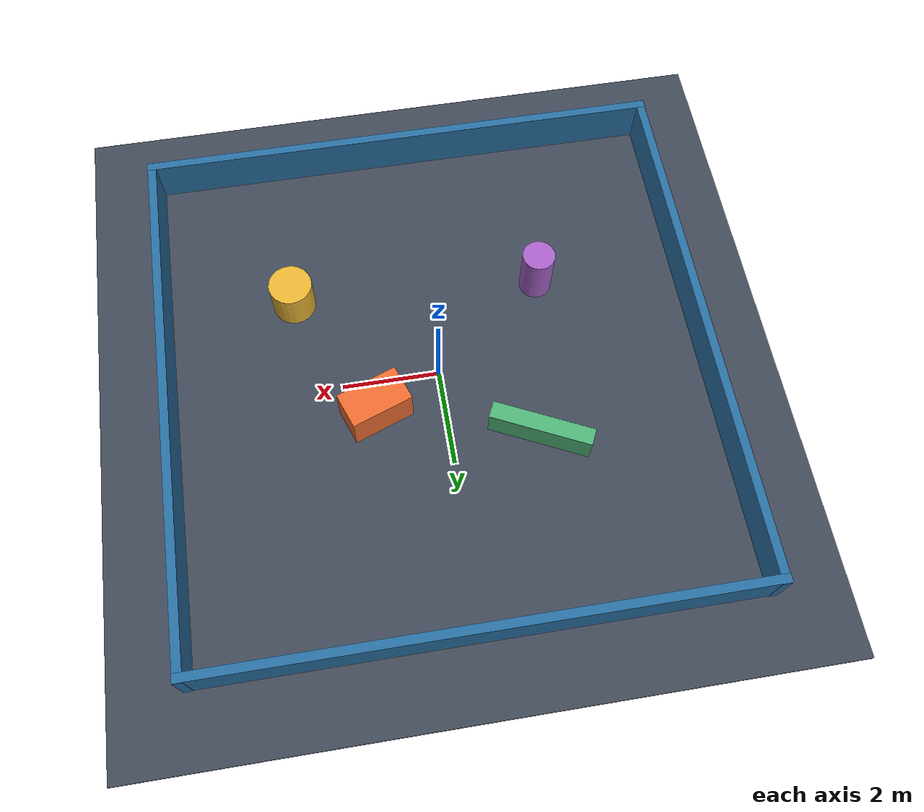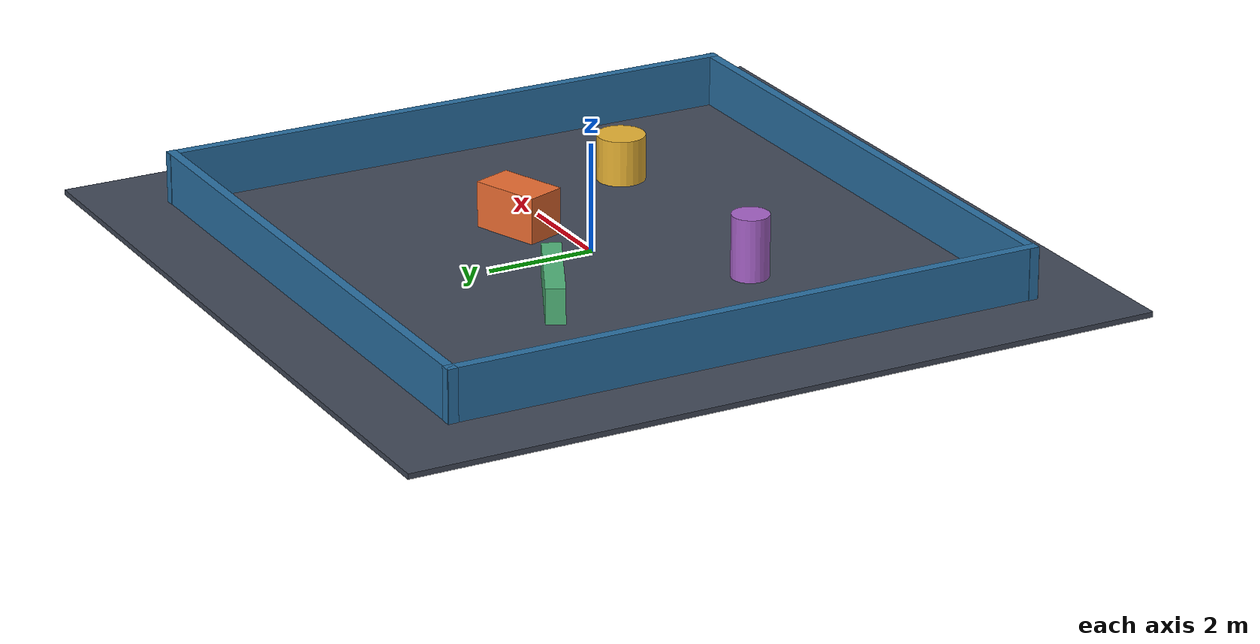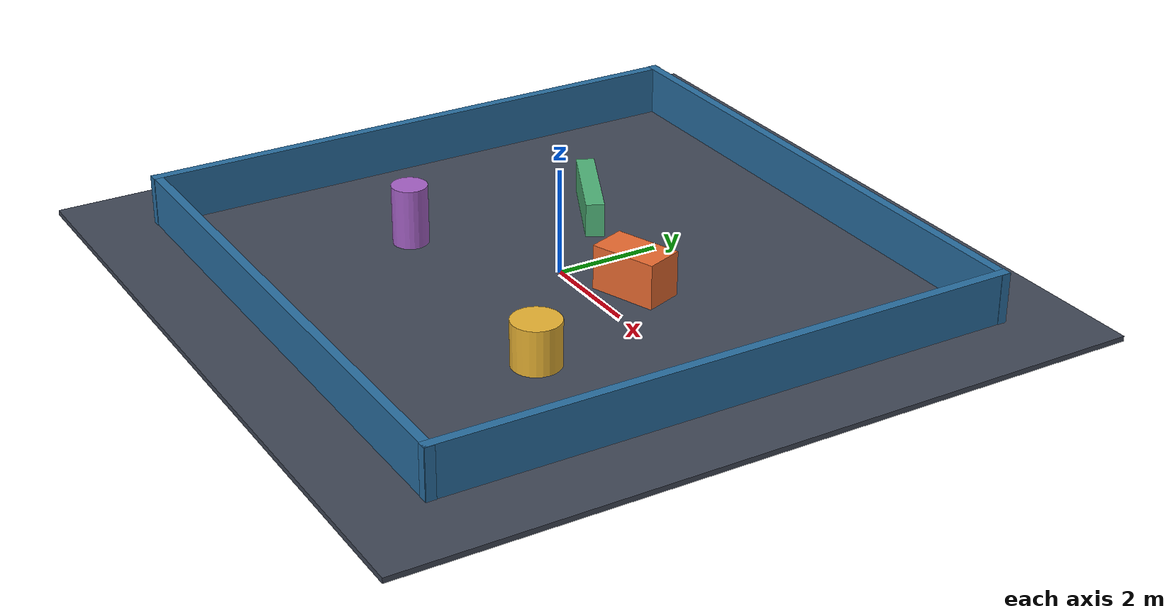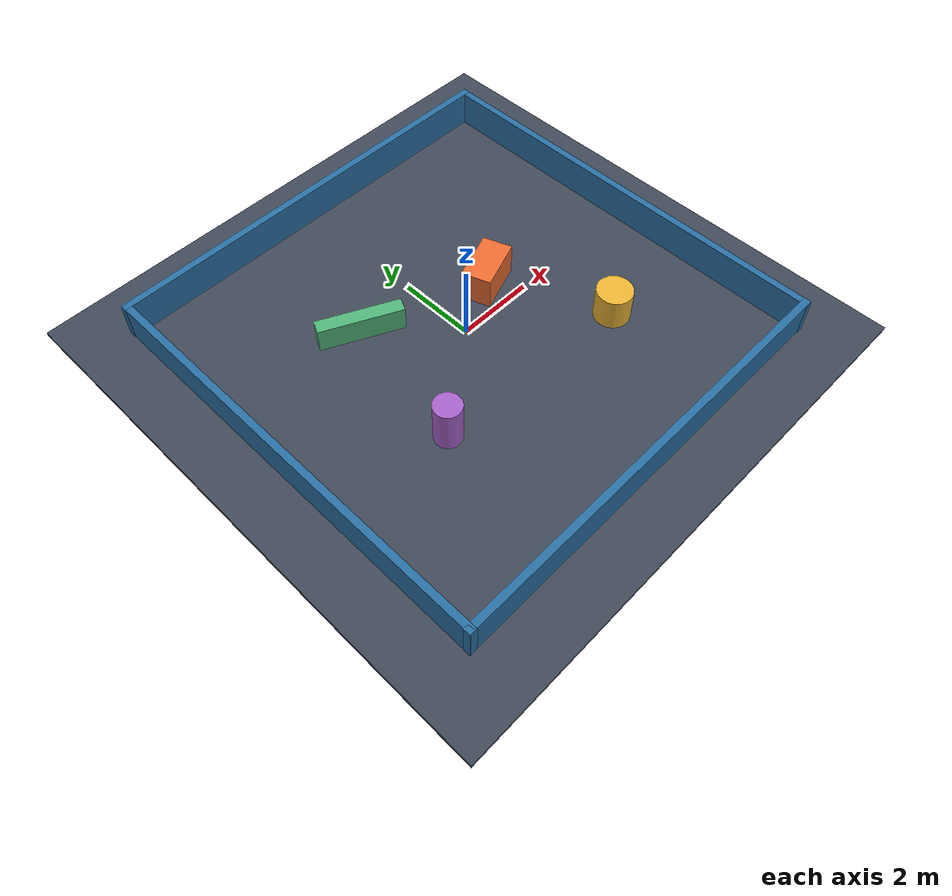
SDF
<?xml version="1.0"?>
<sdf version="1.9">
  <world name="training_world">
    <physics name="default_physics" type="ignored">
      <max_step_size>0.001</max_step_size>
      <real_time_factor>1.0</real_time_factor>
    </physics>

    <plugin filename="gz-sim-physics-system" name="gz::sim::systems::Physics"/>
    <plugin filename="gz-sim-user-commands-system" name="gz::sim::systems::UserCommands"/>
    <plugin filename="gz-sim-scene-broadcaster-system" name="gz::sim::systems::SceneBroadcaster"/>
    <plugin filename="gz-sim-sensors-system" name="gz::sim::systems::Sensors">
      <render_engine>ogre2</render_engine>
    </plugin>

    <scene>
      <ambient>0.55 0.58 0.64 1</ambient>
      <background>0.035 0.045 0.065 1</background>
      <shadows>true</shadows>
      <grid>true</grid>
    </scene>

    <light name="sun" type="directional">
      <cast_shadows>true</cast_shadows>
      <pose>0 0 10 0 0 0</pose>
      <diffuse>0.9 0.9 0.86 1</diffuse>
      <specular>0.25 0.25 0.25 1</specular>
      <direction>-0.4 0.25 -1.0</direction>
    </light>

    <model name="ground">
      <static>true</static>
      <link name="ground_link">
        <collision name="collision">
          <geometry><box><size>14 14 0.1</size></box></geometry>
        </collision>
        <visual name="visual">
          <geometry><box><size>14 14 0.1</size></box></geometry>
          <material>
            <ambient>0.21 0.24 0.29 1</ambient>
            <diffuse>0.25 0.28 0.34 1</diffuse>
            <roughness>0.85</roughness>
          </material>
        </visual>
      </link>
    </model>

    <model name="north_wall">
      <static>true</static>
      <pose>0 5.5 0.5 0 0 0</pose>
      <link name="link"><collision name="collision"><geometry><box><size>11.2 0.18 1.0</size></box></geometry></collision><visual name="visual"><geometry><box><size>11.2 0.18 1.0</size></box></geometry><material><diffuse>0.16 0.43 0.63 1</diffuse></material></visual></link>
    </model>
    <model name="south_wall">
      <static>true</static>
      <pose>0 -5.5 0.5 0 0 0</pose>
      <link name="link"><collision name="collision"><geometry><box><size>11.2 0.18 1.0</size></box></geometry></collision><visual name="visual"><geometry><box><size>11.2 0.18 1.0</size></box></geometry><material><diffuse>0.16 0.43 0.63 1</diffuse></material></visual></link>
    </model>
    <model name="east_wall">
      <static>true</static>
      <pose>5.5 0 0.5 0 0 0</pose>
      <link name="link"><collision name="collision"><geometry><box><size>0.18 11.2 1.0</size></box></geometry></collision><visual name="visual"><geometry><box><size>0.18 11.2 1.0</size></box></geometry><material><diffuse>0.16 0.43 0.63 1</diffuse></material></visual></link>
    </model>
    <model name="west_wall">
      <static>true</static>
      <pose>-5.5 0 0.5 0 0 0</pose>
      <link name="link"><collision name="collision"><geometry><box><size>0.18 11.2 1.0</size></box></geometry></collision><visual name="visual"><geometry><box><size>0.18 11.2 1.0</size></box></geometry><material><diffuse>0.16 0.43 0.63 1</diffuse></material></visual></link>
    </model>

    <model name="center_block">
      <static>true</static>
      <pose>1.4 0.7 0.45 0 0 0.35</pose>
      <link name="link">
        <collision name="collision"><geometry><box><size>1.3 0.75 0.9</size></box></geometry></collision>
        <visual name="visual"><geometry><box><size>1.3 0.75 0.9</size></box></geometry><material><diffuse>0.92 0.42 0.19 1</diffuse></material></visual>
      </link>
    </model>

    <model name="long_barrier">
      <static>true</static>
      <pose>-1.8 1.7 0.35 0 0 -0.45</pose>
      <link name="link">
        <collision name="collision"><geometry><box><size>2.1 0.35 0.7</size></box></geometry></collision>
        <visual name="visual"><geometry><box><size>2.1 0.35 0.7</size></box></geometry><material><diffuse>0.31 0.70 0.47 1</diffuse></material></visual>
      </link>
    </model>

    <model name="pillar_one">
      <static>true</static>
      <pose>-2.4 -1.8 0.6 0 0 0</pose>
      <link name="link">
        <collision name="collision"><geometry><cylinder><radius>0.34</radius><length>1.2</length></cylinder></geometry></collision>
        <visual name="visual"><geometry><cylinder><radius>0.34</radius><length>1.2</length></cylinder></geometry><material><diffuse>0.65 0.38 0.78 1</diffuse></material></visual>
      </link>
    </model>

    <model name="pillar_two">
      <static>true</static>
      <pose>2.8 -2.1 0.45 0 0 0</pose>
      <link name="link">
        <collision name="collision"><geometry><cylinder><radius>0.45</radius><length>0.9</length></cylinder></geometry></collision>
        <visual name="visual"><geometry><cylinder><radius>0.45</radius><length>0.9</length></cylinder></geometry><material><diffuse>0.91 0.70 0.20 1</diffuse></material></visual>
      </link>
    </model>

    <gui fullscreen="false">
      <plugin filename="MinimalScene" name="3D View">
        <gz-gui>
          <title>RoboPilot Training World</title>
          <property type="bool" key="showTitleBar">true</property>
          <property type="string" key="state">docked</property>
        </gz-gui>
        <engine>ogre2</engine>
        <scene>scene</scene>
        <ambient_light>0.4 0.4 0.4</ambient_light>
        <background_color>0.035 0.045 0.065</background_color>
        <camera_pose>-6.5 -7.0 6.8 0 0.55 0.78</camera_pose>
      </plugin>
      <plugin filename="GzSceneManager" name="Scene Manager"/>
      <plugin filename="InteractiveViewControl" name="Interactive View Control"/>
      <plugin filename="CameraTracking" name="Camera Tracking"/>
      <plugin filename="WorldControl" name="World control">
        <gz-gui><property type="bool" key="showTitleBar">false</property><property type="bool" key="resizable">false</property><property type="double" key="height">72</property><property type="double" key="width">121</property><property type="double" key="z">1</property><property type="string" key="state">floating</property><anchors target="3D View"><line own="left" target="left"/><line own="bottom" target="bottom"/></anchors></gz-gui>
      </plugin>
    </gui>
  </world>
</sdf>
